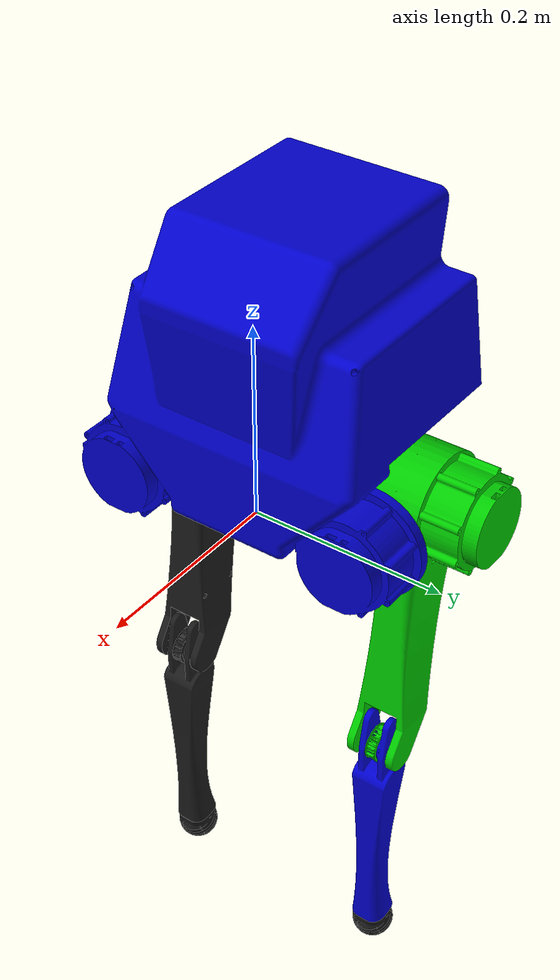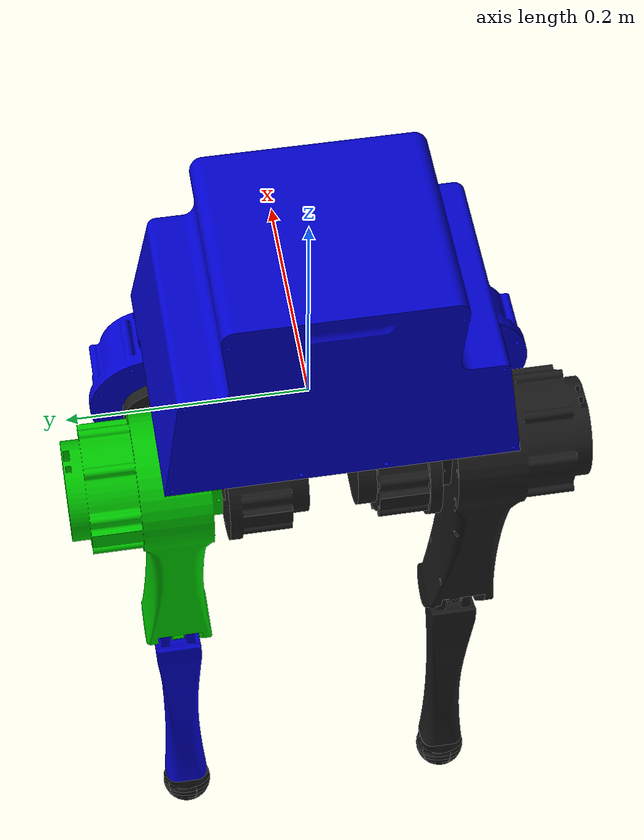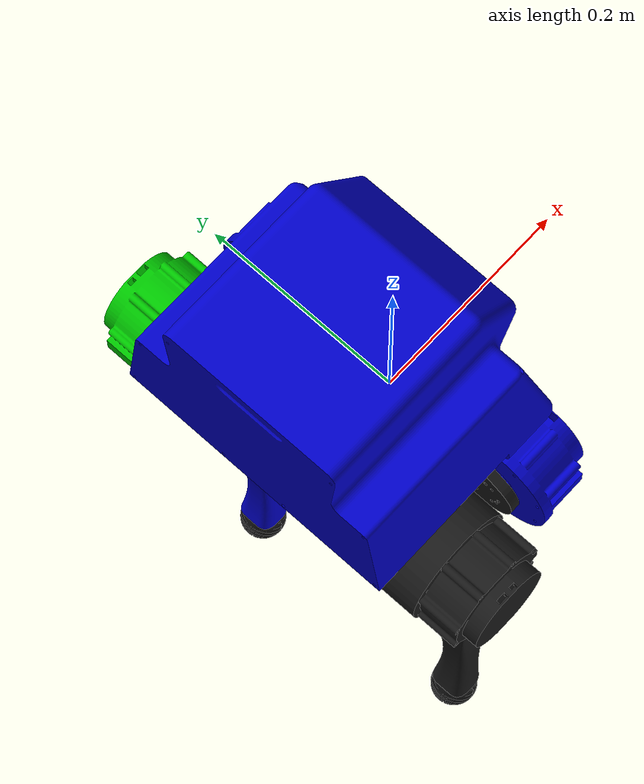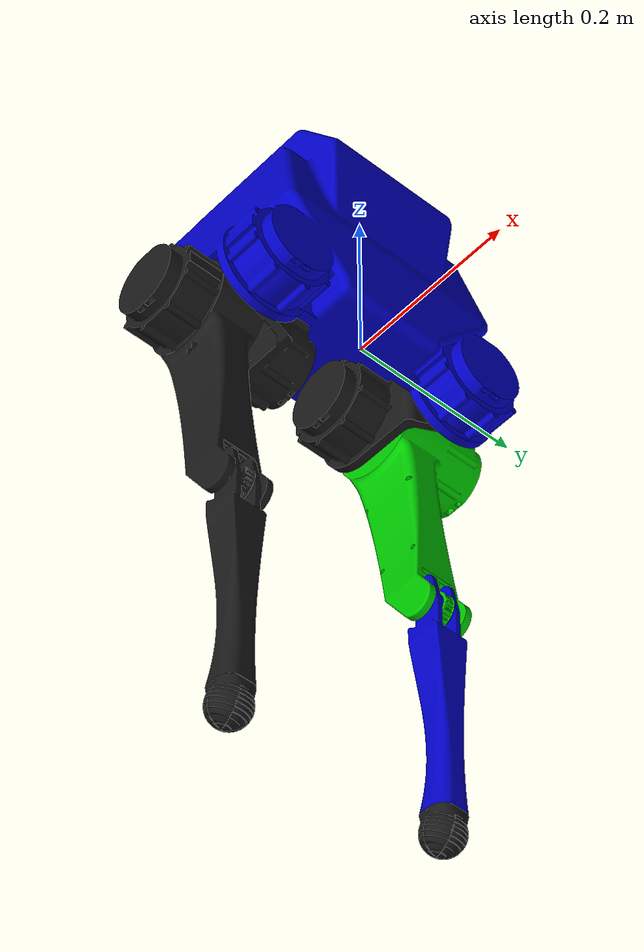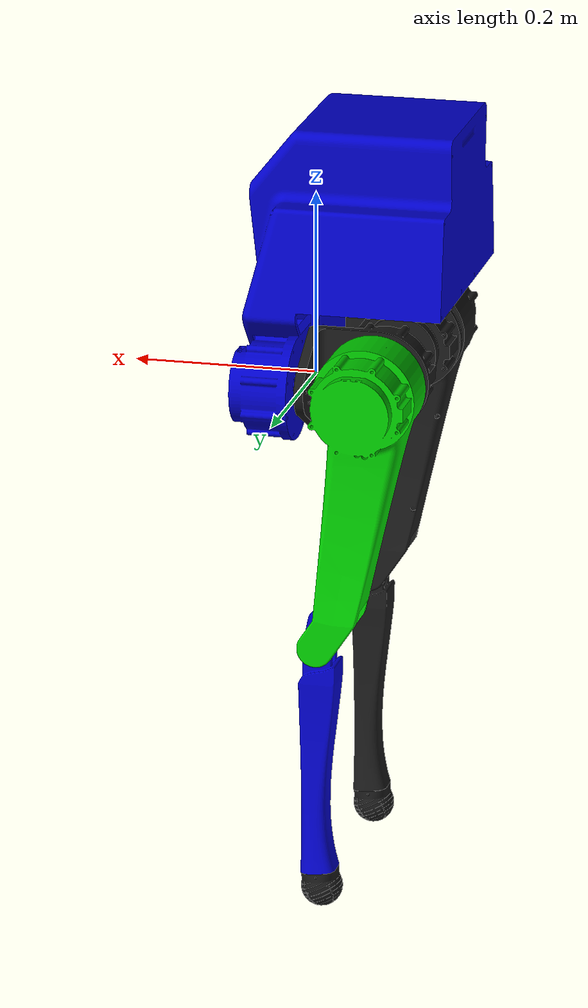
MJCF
<mujoco model="bipedal_robot">
  <compiler angle="radian" meshdir="../meshes/final_stl"/>

  <option integrator="implicitfast"/>

  <default>
    <geom contype="0" conaffinity="0"/>
  </default>

  <asset>
    <mesh name="body_v3_urdf" content_type="model/stl" file="body_v3_urdf.STL" scale="0.001 0.001 0.001"/>
    <mesh name="hip" content_type="model/stl" file="hip.STL" scale="0.001 0.001 0.001"/>
    <mesh name="femur_L_FINAL" content_type="model/stl" file="femur_L_FINAL.STL" scale="0.001 0.001 0.001"/>
    <mesh name="tibia_final" content_type="model/stl" file="tibia_final.STL" scale="0.001 0.001 0.001"/>
    <mesh name="foot_v4" content_type="model/stl" file="foot_v4.STL" scale="0.001 0.001 0.001"/>
    <mesh name="femur_R_FINAL" content_type="model/stl" file="femur_R_FINAL.STL" scale="0.001 0.001 0.001"/>
  </asset>

  <worldbody>
    <geom pos="0 0 0" quat="0.499998 0.5 0.500002 0.5" type="mesh" rgba="0 0 0.8 1" mesh="body_v3_urdf"/>
    <body name="left_hip_connector_link" pos="-0.0125004 0.125 0.02088" quat="-3.89602e-06 -1.29867e-06 0.707107 0.707107">
      <inertial pos="0.06026 0.02088 -0.08217" quat="0.980491 0.00014315 -0.196565 0.000271321" mass="1.02839" diaginertia="0.00155031 0.001299 0.000962692"/>
      <joint name="left_hip_yaw" pos="0 0 0" axis="1 0 0" range="-1.57 0.5" actuatorfrcrange="-60 60" damping="0.1" frictionloss="0.01"/>
      <geom type="mesh" rgba="0.1 0.1 0.1 1" mesh="hip"/>
      <body name="left_femur_link" pos="0.074 0 0" quat="0.499998 0.5 -0.500002 -0.5">
        <inertial pos="0.16258 -0.0111 -0.08518" quat="0.298127 0.439729 -0.581363 0.616259" mass="1.45045" diaginertia="0.0100726 0.00963238 0.00200906"/>
        <joint name="left_hip_pitch" pos="0 0 0" axis="0 1 0" range="-0.18 2" actuatorfrcrange="-60 60" damping="0.1" frictionloss="0.01"/>
        <geom type="mesh" rgba="0 0.8 0 1" mesh="femur_L_FINAL"/>
        <body name="left_tibia_link" pos="0.28154 0 0.05165" quat="1.32679e-06 1 0 0">
          <inertial pos="0.132073 -0.372053 -0.0565048" quat="0.732657 0.672872 -0.0779594 0.0661738" mass="0.32337" diaginertia="0.00273931 0.0026494 0.000153024"/>
          <joint name="left_knee" pos="0 0 0" axis="0 1 0" range="0 2.57" actuatorfrcrange="-60 60" damping="0.1" frictionloss="0.01"/>
          <geom type="mesh" rgba="0 0 0.8 1" mesh="tibia_final"/>
          <geom pos="0.29957 0 0.01196" quat="0.601126 -0.601128 0.372352 0.372353" type="mesh" rgba="0.1 0.1 0.1 1" mesh="foot_v4"/>
        </body>
      </body>
    </body>
    <body name="right_hip_connector_link" pos="-0.0124995 -0.125 0.02088" quat="1.29867e-06 -3.89602e-06 0.707108 -0.707106">
      <inertial pos="-0.06026 0.02088 -0.08217" quat="0.980491 -0.00014315 0.196565 0.000271321" mass="1.02839" diaginertia="0.00155031 0.001299 0.000962692"/>
      <joint name="right_hip_yaw" pos="0 0 0" axis="1 0 0" range="-0.5 1.57" actuatorfrcrange="-60 60" damping="0.1" frictionloss="0.01"/>
      <geom type="mesh" rgba="0.1 0.1 0.1 1" mesh="hip"/>
      <body name="right_femur_link" pos="0.074 0 0" quat="0.499998 0.5 0.500002 0.5">
        <inertial pos="-0.16258 -0.01114 -0.08464" quat="0.613533 0.575317 -0.446136 0.305858" mass="1.45045" diaginertia="0.0100537 0.00963936 0.00200893"/>
        <joint name="right_hip_pitch" pos="0 0 0" axis="0 1 0" range="-2 0.18" actuatorfrcrange="-60 60" damping="0.1" frictionloss="0.01"/>
        <geom type="mesh" rgba="0.1 0.1 0.1 1" mesh="femur_R_FINAL"/>
        <body name="right_tibia_link" pos="0.28154 0 -0.05165">
          <inertial pos="-0.128927 -0.372027 -0.0565094" quat="0.732716 0.672819 -0.0779088 0.0661203" mass="0.32337" diaginertia="0.00274153 0.00265157 0.000153075"/>
          <joint name="right_knee" pos="0 0 0" axis="0 1 0" range="0 2.57" actuatorfrcrange="-60 60" damping="0.1" frictionloss="0.01"/>
          <geom type="mesh" rgba="0.1 0.1 0.1 1" mesh="tibia_final"/>
          <geom pos="0.29977 0 0.01196" quat="0.601126 -0.601128 0.372352 0.372353" type="mesh" rgba="0.1 0.1 0.1 1" mesh="foot_v4"/>
        </body>
      </body>
    </body>
  </worldbody>

  <!-- Position actuators: one per joint, names match the ros2_control joints.
       kp is a starting guess for a light leg; tune later. ctrlrange = joint range. -->
  <actuator>
    <motor name="left_hip_yaw"    joint="left_hip_yaw"    ctrlrange="-60 60"/>
    <motor name="left_hip_pitch"  joint="left_hip_pitch"  ctrlrange="-60 60"/>
    <motor name="left_knee"       joint="left_knee"       ctrlrange="-60 60"/>
    <motor name="right_hip_yaw"   joint="right_hip_yaw"   ctrlrange="-60 60"/>
    <motor name="right_hip_pitch" joint="right_hip_pitch" ctrlrange="-60 60"/>
    <motor name="right_knee"      joint="right_knee"      ctrlrange="-60 60"/>
  </actuator>
</mujoco>
